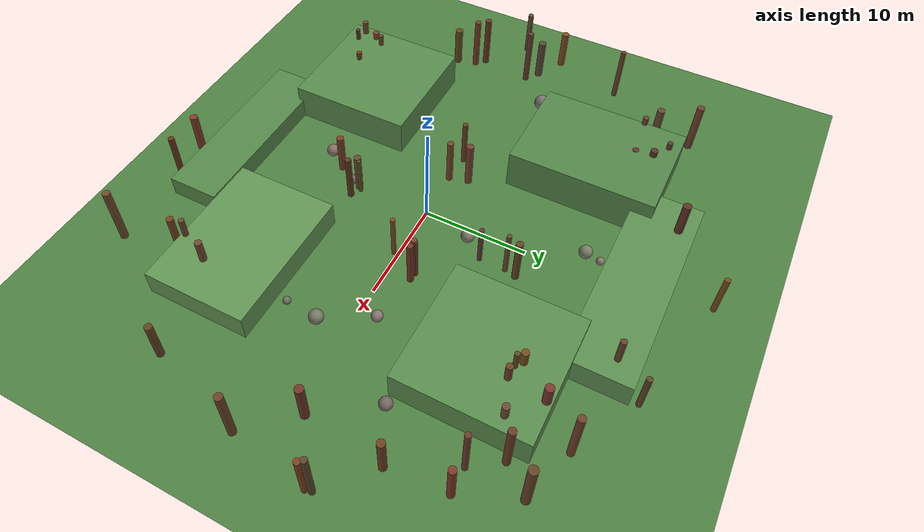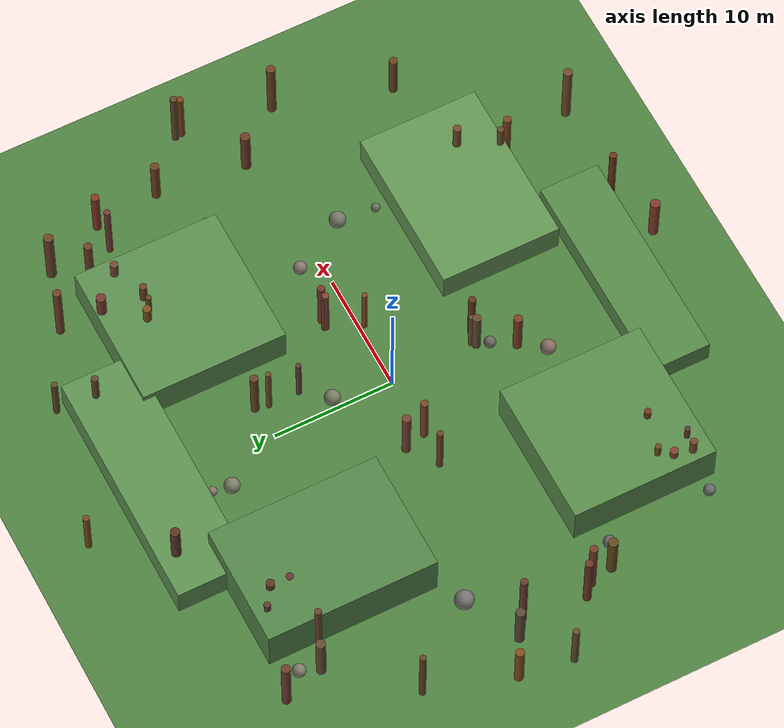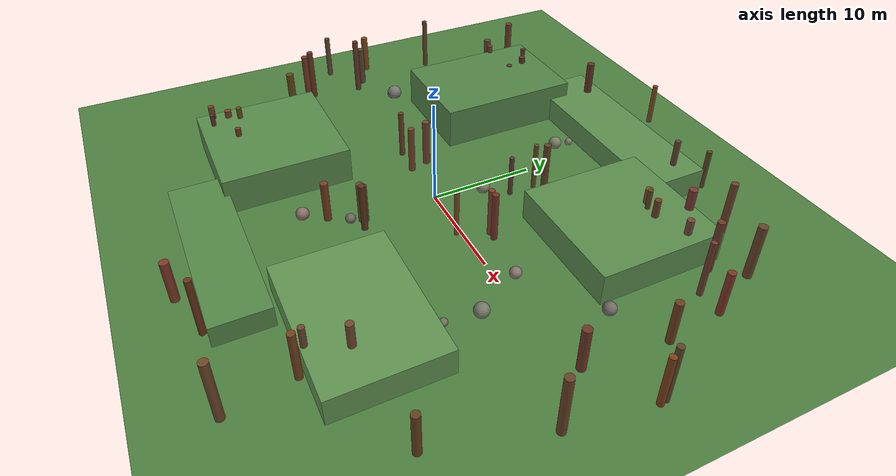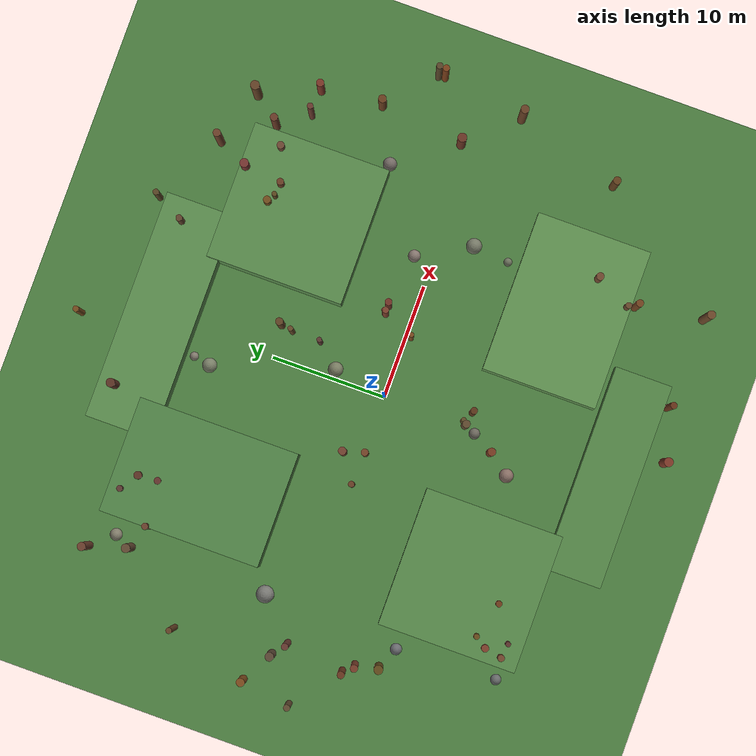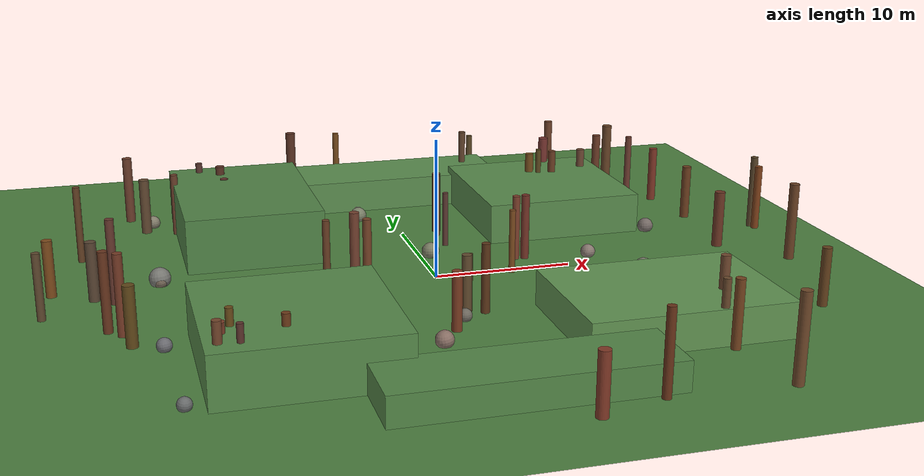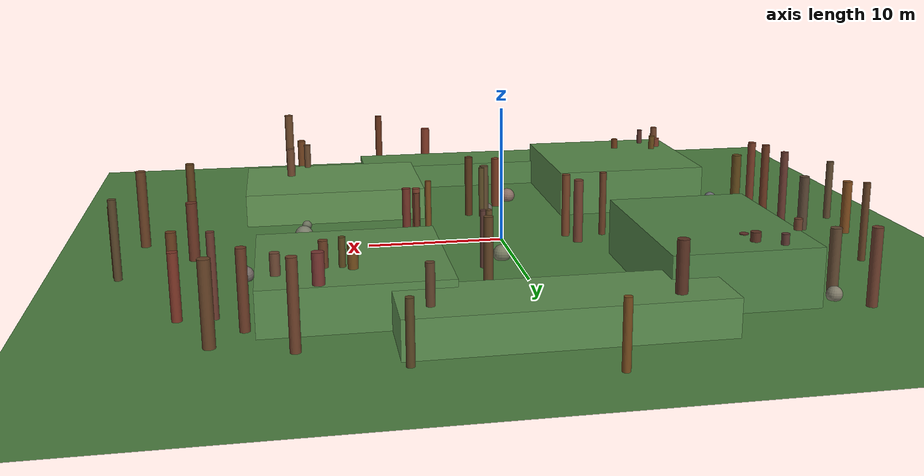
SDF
<?xml version="1.0" ?>
<sdf version="1.8">
  <world name="hills_world">
    <physics name="1ms" type="ignored">
      <max_step_size>0.001</max_step_size>
      <real_time_factor>1.0</real_time_factor>
    </physics>

    <plugin filename="gz-sim-physics-system" name="gz::sim::systems::Physics"/>
    <plugin filename="gz-sim-user-commands-system" name="gz::sim::systems::UserCommands"/>
    <plugin filename="gz-sim-scene-broadcaster-system" name="gz::sim::systems::SceneBroadcaster"/>
    <plugin filename="gz-sim-contact-system" name="gz::sim::systems::Contact"/>
    <plugin filename="gz-sim-sensors-system" name="gz::sim::systems::Sensors">
      <render_engine>ogre2</render_engine>
    </plugin>
    <plugin filename="gz-sim-imu-system" name="gz::sim::systems::Imu"/>

    <gui fullscreen="0">
      <plugin filename="GzScene3D" name="3D View">
        <gz-gui>
          <title>3D View</title>
          <property type="bool" key="showTitleBar">false</property>
        </gz-gui>
        <engine>ogre2</engine>
        <scene>scene</scene>
        <ambient_light>0.4 0.5 0.4</ambient_light>
        <background_color>0.6 0.7 0.85</background_color>
        <camera_pose>0 0 50 0 1.5708 0</camera_pose>
      </plugin>
      <plugin filename="WorldControl" name="World control">
        <gz-gui><title>World control</title></gz-gui>
        <play_pause>true</play_pause>
        <step>true</step>
      </plugin>
      <plugin filename="WorldStats" name="World stats">
        <gz-gui><title>World stats</title></gz-gui>
        <sim_time>true</sim_time>
        <real_time>true</real_time>
        <real_time_factor>true</real_time_factor>
      </plugin>
    </gui>

    <light type="directional" name="sun">
      <cast_shadows>true</cast_shadows>
      <pose>0 0 50 0 0 0</pose>
      <diffuse>0.8 0.8 0.75 1</diffuse>
      <specular>0.2 0.2 0.2 1</specular>
      <attenuation>
        <range>1000</range>
        <constant>0.9</constant>
        <linear>0.01</linear>
        <quadratic>0.001</quadratic>
      </attenuation>
      <direction>-0.3 0.15 -0.9</direction>
    </light>

    <model name="ground_plane">
      <static>true</static>
      <link name="link">
        <collision name="collision">
          <geometry>
            <plane>
              <normal>0 0 1</normal>
              <size>100 100</size>
            </plane>
          </geometry>
        </collision>
        <visual name="visual">
          <geometry>
            <plane>
              <normal>0 0 1</normal>
              <size>100 100</size>
            </plane>
          </geometry>
          <material>
            <ambient>0.3 0.5 0.25 1</ambient>
            <diffuse>0.3 0.5 0.25 1</diffuse>
          </material>
        </visual>
      </link>
    </model>

    <model name="hill_ne">
      <static>true</static>
      <pose>12 12 1.5 0 0 0</pose>
      <link name="link">
        <collision name="collision">
          <geometry><box><size>12 12 3</size></box></geometry>
        </collision>
        <visual name="visual">
          <geometry><box><size>12 12 3</size></box></geometry>
          <material><ambient>0.35 0.55 0.3 1</ambient><diffuse>0.35 0.55 0.3 1</diffuse></material>
        </visual>
      </link>
    </model>

    <model name="hill_nw">
      <static>true</static>
      <pose>-12 12 2.0 0 0 0</pose>
      <link name="link">
        <collision name="collision">
          <geometry><box><size>10 14 4</size></box></geometry>
        </collision>
        <visual name="visual">
          <geometry><box><size>10 14 4</size></box></geometry>
          <material><ambient>0.32 0.52 0.28 1</ambient><diffuse>0.32 0.52 0.28 1</diffuse></material>
        </visual>
      </link>
    </model>

    <model name="hill_se">
      <static>true</static>
      <pose>12 -12 1.25 0 0 0</pose>
      <link name="link">
        <collision name="collision">
          <geometry><box><size>14 10 2.5</size></box></geometry>
        </collision>
        <visual name="visual">
          <geometry><box><size>14 10 2.5</size></box></geometry>
          <material><ambient>0.38 0.58 0.32 1</ambient><diffuse>0.38 0.58 0.32 1</diffuse></material>
        </visual>
      </link>
    </model>

    <model name="hill_sw">
      <static>true</static>
      <pose>-12 -12 1.75 0 0 0</pose>
      <link name="link">
        <collision name="collision">
          <geometry><box><size>12 12 3.5</size></box></geometry>
        </collision>
        <visual name="visual">
          <geometry><box><size>12 12 3.5</size></box></geometry>
          <material><ambient>0.34 0.54 0.29 1</ambient><diffuse>0.34 0.54 0.29 1</diffuse></material>
        </visual>
      </link>
    </model>

    <model name="ridge_north">
      <static>true</static>
      <pose>0 20 1.25 0 0 0</pose>
      <link name="link">
        <collision name="collision">
          <geometry><box><size>20 6 2.5</size></box></geometry>
        </collision>
        <visual name="visual">
          <geometry><box><size>20 6 2.5</size></box></geometry>
          <material><ambient>0.36 0.56 0.31 1</ambient><diffuse>0.36 0.56 0.31 1</diffuse></material>
        </visual>
      </link>
    </model>

    <model name="ridge_south">
      <static>true</static>
      <pose>0 -20 1.0 0 0 0</pose>
      <link name="link">
        <collision name="collision">
          <geometry><box><size>18 5 2</size></box></geometry>
        </collision>
        <visual name="visual">
          <geometry><box><size>18 5 2</size></box></geometry>
          <material><ambient>0.33 0.53 0.28 1</ambient><diffuse>0.33 0.53 0.28 1</diffuse></material>
        </visual>
      </link>
    </model>

    <model name="tree_perimeter_000">
      <static>true</static>
      <pose>7.28 -22.82 2.82 0 0 3.84</pose>
      <link name="link">
        <collision name="collision">
          <geometry><cylinder><radius>0.29</radius><length>5.65</length></cylinder></geometry>
        </collision>
        <visual name="visual">
          <geometry><cylinder><radius>0.29</radius><length>5.65</length></cylinder></geometry>
          <material><ambient>0.41 0.20 0.10 1</ambient><diffuse>0.41 0.20 0.10 1</diffuse></material>
        </visual>
      </link>
    </model>

    <model name="tree_perimeter_001">
      <static>true</static>
      <pose>18.64 16.45 2.61 0 0 4.56</pose>
      <link name="link">
        <collision name="collision">
          <geometry><cylinder><radius>0.33</radius><length>5.22</length></cylinder></geometry>
        </collision>
        <visual name="visual">
          <geometry><cylinder><radius>0.33</radius><length>5.22</length></cylinder></geometry>
          <material><ambient>0.42 0.23 0.15 1</ambient><diffuse>0.42 0.23 0.15 1</diffuse></material>
        </visual>
      </link>
    </model>

    <model name="tree_perimeter_002">
      <static>true</static>
      <pose>15.74 20.42 2.85 0 0 5.47</pose>
      <link name="link">
        <collision name="collision">
          <geometry><cylinder><radius>0.33</radius><length>5.70</length></cylinder></geometry>
        </collision>
        <visual name="visual">
          <geometry><cylinder><radius>0.33</radius><length>5.70</length></cylinder></geometry>
          <material><ambient>0.43 0.25 0.16 1</ambient><diffuse>0.43 0.25 0.16 1</diffuse></material>
        </visual>
      </link>
    </model>

    <model name="tree_perimeter_003">
      <static>true</static>
      <pose>27.30 4.92 2.81 0 0 5.49</pose>
      <link name="link">
        <collision name="collision">
          <geometry><cylinder><radius>0.28</radius><length>5.63</length></cylinder></geometry>
        </collision>
        <visual name="visual">
          <geometry><cylinder><radius>0.28</radius><length>5.63</length></cylinder></geometry>
          <material><ambient>0.35 0.27 0.16 1</ambient><diffuse>0.35 0.27 0.16 1</diffuse></material>
        </visual>
      </link>
    </model>

    <model name="tree_perimeter_004">
      <static>true</static>
      <pose>-26.99 -1.24 2.32 0 0 4.50</pose>
      <link name="link">
        <collision name="collision">
          <geometry><cylinder><radius>0.28</radius><length>4.64</length></cylinder></geometry>
        </collision>
        <visual name="visual">
          <geometry><cylinder><radius>0.28</radius><length>4.64</length></cylinder></geometry>
          <material><ambient>0.37 0.28 0.18 1</ambient><diffuse>0.37 0.28 0.18 1</diffuse></material>
        </visual>
      </link>
    </model>

    <model name="tree_perimeter_005">
      <static>true</static>
      <pose>22.77 13.89 2.20 0 0 1.74</pose>
      <link name="link">
        <collision name="collision">
          <geometry><cylinder><radius>0.33</radius><length>4.41</length></cylinder></geometry>
        </collision>
        <visual name="visual">
          <geometry><cylinder><radius>0.33</radius><length>4.41</length></cylinder></geometry>
          <material><ambient>0.49 0.21 0.15 1</ambient><diffuse>0.49 0.21 0.15 1</diffuse></material>
        </visual>
      </link>
    </model>

    <model name="tree_perimeter_006">
      <static>true</static>
      <pose>8.06 20.99 2.56 0 0 0.54</pose>
      <link name="link">
        <collision name="collision">
          <geometry><cylinder><radius>0.28</radius><length>5.12</length></cylinder></geometry>
        </collision>
        <visual name="visual">
          <geometry><cylinder><radius>0.28</radius><length>5.12</length></cylinder></geometry>
          <material><ambient>0.38 0.26 0.17 1</ambient><diffuse>0.38 0.26 0.17 1</diffuse></material>
        </visual>
      </link>
    </model>

    <model name="tree_perimeter_007">
      <static>true</static>
      <pose>-24.24 10.01 2.84 0 0 3.01</pose>
      <link name="link">
        <collision name="collision">
          <geometry><cylinder><radius>0.26</radius><length>5.68</length></cylinder></geometry>
        </collision>
        <visual name="visual">
          <geometry><cylinder><radius>0.26</radius><length>5.68</length></cylinder></geometry>
          <material><ambient>0.39 0.25 0.14 1</ambient><diffuse>0.39 0.25 0.14 1</diffuse></material>
        </visual>
      </link>
    </model>

    <model name="tree_perimeter_008">
      <static>true</static>
      <pose>26.27 -2.97 2.85 0 0 2.41</pose>
      <link name="link">
        <collision name="collision">
          <geometry><cylinder><radius>0.36</radius><length>5.70</length></cylinder></geometry>
        </collision>
        <visual name="visual">
          <geometry><cylinder><radius>0.36</radius><length>5.70</length></cylinder></geometry>
          <material><ambient>0.41 0.25 0.14 1</ambient><diffuse>0.41 0.25 0.14 1</diffuse></material>
        </visual>
      </link>
    </model>

    <model name="tree_perimeter_009">
      <static>true</static>
      <pose>20.49 13.91 2.78 0 0 0.77</pose>
      <link name="link">
        <collision name="collision">
          <geometry><cylinder><radius>0.26</radius><length>5.56</length></cylinder></geometry>
        </collision>
        <visual name="visual">
          <geometry><cylinder><radius>0.26</radius><length>5.56</length></cylinder></geometry>
          <material><ambient>0.42 0.23 0.18 1</ambient><diffuse>0.42 0.23 0.18 1</diffuse></material>
        </visual>
      </link>
    </model>

    <model name="tree_perimeter_010">
      <static>true</static>
      <pose>-22.00 -5.35 2.78 0 0 6.00</pose>
      <link name="link">
        <collision name="collision">
          <geometry><cylinder><radius>0.32</radius><length>5.55</length></cylinder></geometry>
        </collision>
        <visual name="visual">
          <geometry><cylinder><radius>0.32</radius><length>5.55</length></cylinder></geometry>
          <material><ambient>0.46 0.23 0.15 1</ambient><diffuse>0.46 0.23 0.15 1</diffuse></material>
        </visual>
      </link>
    </model>

    <model name="tree_perimeter_011">
      <static>true</static>
      <pose>-21.52 -7.30 2.06 0 0 4.64</pose>
      <link name="link">
        <collision name="collision">
          <geometry><cylinder><radius>0.39</radius><length>4.11</length></cylinder></geometry>
        </collision>
        <visual name="visual">
          <geometry><cylinder><radius>0.39</radius><length>4.11</length></cylinder></geometry>
          <material><ambient>0.38 0.28 0.10 1</ambient><diffuse>0.38 0.28 0.10 1</diffuse></material>
        </visual>
      </link>
    </model>

    <model name="tree_perimeter_012">
      <static>true</static>
      <pose>15.38 -23.21 2.95 0 0 6.08</pose>
      <link name="link">
        <collision name="collision">
          <geometry><cylinder><radius>0.36</radius><length>5.89</length></cylinder></geometry>
        </collision>
        <visual name="visual">
          <geometry><cylinder><radius>0.36</radius><length>5.89</length></cylinder></geometry>
          <material><ambient>0.43 0.28 0.16 1</ambient><diffuse>0.43 0.28 0.16 1</diffuse></material>
        </visual>
      </link>
    </model>

    <model name="tree_perimeter_013">
      <static>true</static>
      <pose>-22.87 -4.51 2.74 0 0 5.33</pose>
      <link name="link">
        <collision name="collision">
          <geometry><cylinder><radius>0.32</radius><length>5.48</length></cylinder></geometry>
        </collision>
        <visual name="visual">
          <geometry><cylinder><radius>0.32</radius><length>5.48</length></cylinder></geometry>
          <material><ambient>0.41 0.21 0.12 1</ambient><diffuse>0.41 0.21 0.12 1</diffuse></material>
        </visual>
      </link>
    </model>

    <model name="tree_perimeter_014">
      <static>true</static>
      <pose>2.82 -24.14 2.04 0 0 4.69</pose>
      <link name="link">
        <collision name="collision">
          <geometry><cylinder><radius>0.39</radius><length>4.07</length></cylinder></geometry>
        </collision>
        <visual name="visual">
          <geometry><cylinder><radius>0.39</radius><length>4.07</length></cylinder></geometry>
          <material><ambient>0.50 0.22 0.15 1</ambient><diffuse>0.50 0.22 0.15 1</diffuse></material>
        </visual>
      </link>
    </model>

    <model name="tree_perimeter_015">
      <static>true</static>
      <pose>-22.23 0.59 2.99 0 0 4.90</pose>
      <link name="link">
        <collision name="collision">
          <geometry><cylinder><radius>0.30</radius><length>5.98</length></cylinder></geometry>
        </collision>
        <visual name="visual">
          <geometry><cylinder><radius>0.30</radius><length>5.98</length></cylinder></geometry>
          <material><ambient>0.40 0.22 0.18 1</ambient><diffuse>0.40 0.22 0.18 1</diffuse></material>
        </visual>
      </link>
    </model>

    <model name="tree_perimeter_016">
      <static>true</static>
      <pose>20.60 18.84 2.69 0 0 0.73</pose>
      <link name="link">
        <collision name="collision">
          <geometry><cylinder><radius>0.39</radius><length>5.38</length></cylinder></geometry>
        </collision>
        <visual name="visual">
          <geometry><cylinder><radius>0.39</radius><length>5.38</length></cylinder></geometry>
          <material><ambient>0.40 0.26 0.15 1</ambient><diffuse>0.40 0.26 0.15 1</diffuse></material>
        </visual>
      </link>
    </model>

    <model name="tree_perimeter_017">
      <static>true</static>
      <pose>23.31 8.55 2.10 0 0 5.96</pose>
      <link name="link">
        <collision name="collision">
          <geometry><cylinder><radius>0.35</radius><length>4.19</length></cylinder></geometry>
        </collision>
        <visual name="visual">
          <geometry><cylinder><radius>0.35</radius><length>4.19</length></cylinder></geometry>
          <material><ambient>0.42 0.24 0.12 1</ambient><diffuse>0.42 0.24 0.12 1</diffuse></material>
        </visual>
      </link>
    </model>

    <model name="tree_perimeter_018">
      <static>true</static>
      <pose>-6.73 21.52 2.92 0 0 5.13</pose>
      <link name="link">
        <collision name="collision">
          <geometry><cylinder><radius>0.38</radius><length>5.83</length></cylinder></geometry>
        </collision>
        <visual name="visual">
          <geometry><cylinder><radius>0.38</radius><length>5.83</length></cylinder></geometry>
          <material><ambient>0.36 0.20 0.14 1</ambient><diffuse>0.36 0.20 0.14 1</diffuse></material>
        </visual>
      </link>
    </model>

    <model name="tree_perimeter_019">
      <static>true</static>
      <pose>23.51 -12.23 2.06 0 0 5.05</pose>
      <link name="link">
        <collision name="collision">
          <geometry><cylinder><radius>0.34</radius><length>4.12</length></cylinder></geometry>
        </collision>
        <visual name="visual">
          <geometry><cylinder><radius>0.34</radius><length>4.12</length></cylinder></geometry>
          <material><ambient>0.39 0.25 0.11 1</ambient><diffuse>0.39 0.25 0.11 1</diffuse></material>
        </visual>
      </link>
    </model>

    <model name="tree_perimeter_020">
      <static>true</static>
      <pose>-26.38 3.09 2.03 0 0 1.76</pose>
      <link name="link">
        <collision name="collision">
          <geometry><cylinder><radius>0.36</radius><length>4.05</length></cylinder></geometry>
        </collision>
        <visual name="visual">
          <geometry><cylinder><radius>0.36</radius><length>4.05</length></cylinder></geometry>
          <material><ambient>0.49 0.29 0.11 1</ambient><diffuse>0.49 0.29 0.11 1</diffuse></material>
        </visual>
      </link>
    </model>

    <model name="tree_perimeter_021">
      <static>true</static>
      <pose>22.50 1.16 2.11 0 0 6.00</pose>
      <link name="link">
        <collision name="collision">
          <geometry><cylinder><radius>0.39</radius><length>4.23</length></cylinder></geometry>
        </collision>
        <visual name="visual">
          <geometry><cylinder><radius>0.39</radius><length>4.23</length></cylinder></geometry>
          <material><ambient>0.42 0.21 0.14 1</ambient><diffuse>0.42 0.21 0.14 1</diffuse></material>
        </visual>
      </link>
    </model>

    <model name="tree_perimeter_022">
      <static>true</static>
      <pose>-19.18 15.81 2.14 0 0 6.04</pose>
      <link name="link">
        <collision name="collision">
          <geometry><cylinder><radius>0.38</radius><length>4.27</length></cylinder></geometry>
        </collision>
        <visual name="visual">
          <geometry><cylinder><radius>0.38</radius><length>4.27</length></cylinder></geometry>
          <material><ambient>0.38 0.28 0.19 1</ambient><diffuse>0.38 0.28 0.19 1</diffuse></material>
        </visual>
      </link>
    </model>

    <model name="tree_perimeter_023">
      <static>true</static>
      <pose>-1.93 26.56 2.16 0 0 5.75</pose>
      <link name="link">
        <collision name="collision">
          <geometry><cylinder><radius>0.26</radius><length>4.33</length></cylinder></geometry>
        </collision>
        <visual name="visual">
          <geometry><cylinder><radius>0.26</radius><length>4.33</length></cylinder></geometry>
          <material><ambient>0.46 0.29 0.11 1</ambient><diffuse>0.46 0.29 0.11 1</diffuse></material>
        </visual>
      </link>
    </model>

    <model name="tree_perimeter_024">
      <static>true</static>
      <pose>27.41 4.36 2.50 0 0 4.36</pose>
      <link name="link">
        <collision name="collision">
          <geometry><cylinder><radius>0.29</radius><length>5.00</length></cylinder></geometry>
        </collision>
        <visual name="visual">
          <geometry><cylinder><radius>0.29</radius><length>5.00</length></cylinder></geometry>
          <material><ambient>0.49 0.25 0.10 1</ambient><diffuse>0.49 0.25 0.10 1</diffuse></material>
        </visual>
      </link>
    </model>

    <model name="tree_perimeter_025">
      <static>true</static>
      <pose>-20.23 19.20 2.60 0 0 1.82</pose>
      <link name="link">
        <collision name="collision">
          <geometry><cylinder><radius>0.36</radius><length>5.20</length></cylinder></geometry>
        </collision>
        <visual name="visual">
          <geometry><cylinder><radius>0.36</radius><length>5.20</length></cylinder></geometry>
          <material><ambient>0.42 0.24 0.17 1</ambient><diffuse>0.42 0.24 0.17 1</diffuse></material>
        </visual>
      </link>
    </model>

    <model name="tree_perimeter_026">
      <static>true</static>
      <pose>-23.56 1.55 2.10 0 0 1.09</pose>
      <link name="link">
        <collision name="collision">
          <geometry><cylinder><radius>0.38</radius><length>4.21</length></cylinder></geometry>
        </collision>
        <visual name="visual">
          <geometry><cylinder><radius>0.38</radius><length>4.21</length></cylinder></geometry>
          <material><ambient>0.35 0.27 0.20 1</ambient><diffuse>0.35 0.27 0.20 1</diffuse></material>
        </visual>
      </link>
    </model>

    <model name="tree_perimeter_027">
      <static>true</static>
      <pose>-17.14 -16.47 2.45 0 0 3.04</pose>
      <link name="link">
        <collision name="collision">
          <geometry><cylinder><radius>0.29</radius><length>4.91</length></cylinder></geometry>
        </collision>
        <visual name="visual">
          <geometry><cylinder><radius>0.29</radius><length>4.91</length></cylinder></geometry>
          <material><ambient>0.45 0.27 0.17 1</ambient><diffuse>0.45 0.27 0.17 1</diffuse></material>
        </visual>
      </link>
    </model>

    <model name="tree_perimeter_028">
      <static>true</static>
      <pose>9.54 23.70 2.02 0 0 4.99</pose>
      <link name="link">
        <collision name="collision">
          <geometry><cylinder><radius>0.26</radius><length>4.04</length></cylinder></geometry>
        </collision>
        <visual name="visual">
          <geometry><cylinder><radius>0.26</radius><length>4.04</length></cylinder></geometry>
          <material><ambient>0.35 0.27 0.14 1</ambient><diffuse>0.35 0.27 0.14 1</diffuse></material>
        </visual>
      </link>
    </model>

    <model name="tree_perimeter_029">
      <static>true</static>
      <pose>14.22 17.49 2.51 0 0 2.43</pose>
      <link name="link">
        <collision name="collision">
          <geometry><cylinder><radius>0.38</radius><length>5.02</length></cylinder></geometry>
        </collision>
        <visual name="visual">
          <geometry><cylinder><radius>0.38</radius><length>5.02</length></cylinder></geometry>
          <material><ambient>0.47 0.21 0.19 1</ambient><diffuse>0.47 0.21 0.19 1</diffuse></material>
        </visual>
      </link>
    </model>

    <model name="tree_scatter_000">
      <static>true</static>
      <pose>5.50 -0.45 2.33 0 0 5.10</pose>
      <link name="link">
        <collision name="collision">
          <geometry><cylinder><radius>0.22</radius><length>4.66</length></cylinder></geometry>
        </collision>
        <visual name="visual">
          <geometry><cylinder><radius>0.22</radius><length>4.66</length></cylinder></geometry>
          <material><ambient>0.48 0.29 0.12 1</ambient><diffuse>0.48 0.29 0.12 1</diffuse></material>
        </visual>
      </link>
    </model>

    <model name="tree_scatter_001">
      <static>true</static>
      <pose>6.70 2.26 2.41 0 0 3.73</pose>
      <link name="link">
        <collision name="collision">
          <geometry><cylinder><radius>0.28</radius><length>4.82</length></cylinder></geometry>
        </collision>
        <visual name="visual">
          <geometry><cylinder><radius>0.28</radius><length>4.82</length></cylinder></geometry>
          <material><ambient>0.49 0.25 0.17 1</ambient><diffuse>0.49 0.25 0.17 1</diffuse></material>
        </visual>
      </link>
    </model>

    <model name="tree_scatter_002">
      <static>true</static>
      <pose>7.41 2.26 2.42 0 0 0.66</pose>
      <link name="link">
        <collision name="collision">
          <geometry><cylinder><radius>0.30</radius><length>4.85</length></cylinder></geometry>
        </collision>
        <visual name="visual">
          <geometry><cylinder><radius>0.30</radius><length>4.85</length></cylinder></geometry>
          <material><ambient>0.45 0.20 0.15 1</ambient><diffuse>0.45 0.20 0.15 1</diffuse></material>
        </visual>
      </link>
    </model>

    <model name="tree_scatter_003">
      <static>true</static>
      <pose>6.70 2.40 2.26 0 0 0.17</pose>
      <link name="link">
        <collision name="collision">
          <geometry><cylinder><radius>0.21</radius><length>4.52</length></cylinder></geometry>
        </collision>
        <visual name="visual">
          <geometry><cylinder><radius>0.21</radius><length>4.52</length></cylinder></geometry>
          <material><ambient>0.40 0.21 0.13 1</ambient><diffuse>0.40 0.21 0.13 1</diffuse></material>
        </visual>
      </link>
    </model>

    <model name="tree_scatter_004">
      <static>true</static>
      <pose>-5.52 1.66 2.38 0 0 0.81</pose>
      <link name="link">
        <collision name="collision">
          <geometry><cylinder><radius>0.35</radius><length>4.75</length></cylinder></geometry>
        </collision>
        <visual name="visual">
          <geometry><cylinder><radius>0.35</radius><length>4.75</length></cylinder></geometry>
          <material><ambient>0.45 0.25 0.18 1</ambient><diffuse>0.45 0.25 0.18 1</diffuse></material>
        </visual>
      </link>
    </model>

    <model name="tree_scatter_005">
      <static>true</static>
      <pose>-5.00 -0.13 2.39 0 0 5.09</pose>
      <link name="link">
        <collision name="collision">
          <geometry><cylinder><radius>0.31</radius><length>4.78</length></cylinder></geometry>
        </collision>
        <visual name="visual">
          <geometry><cylinder><radius>0.31</radius><length>4.78</length></cylinder></geometry>
          <material><ambient>0.46 0.26 0.15 1</ambient><diffuse>0.46 0.26 0.15 1</diffuse></material>
        </visual>
      </link>
    </model>

    <model name="tree_scatter_006">
      <static>true</static>
      <pose>-7.85 0.03 2.43 0 0 4.84</pose>
      <link name="link">
        <collision name="collision">
          <geometry><cylinder><radius>0.26</radius><length>4.87</length></cylinder></geometry>
        </collision>
        <visual name="visual">
          <geometry><cylinder><radius>0.26</radius><length>4.87</length></cylinder></geometry>
          <material><ambient>0.41 0.24 0.14 1</ambient><diffuse>0.41 0.24 0.14 1</diffuse></material>
        </visual>
      </link>
    </model>

    <model name="tree_scatter_007">
      <static>true</static>
      <pose>2.82 10.25 2.33 0 0 0.16</pose>
      <link name="link">
        <collision name="collision">
          <geometry><cylinder><radius>0.33</radius><length>4.66</length></cylinder></geometry>
        </collision>
        <visual name="visual">
          <geometry><cylinder><radius>0.33</radius><length>4.66</length></cylinder></geometry>
          <material><ambient>0.38 0.26 0.14 1</ambient><diffuse>0.38 0.26 0.14 1</diffuse></material>
        </visual>
      </link>
    </model>

    <model name="tree_scatter_008">
      <static>true</static>
      <pose>2.55 6.65 2.07 0 0 2.68</pose>
      <link name="link">
        <collision name="collision">
          <geometry><cylinder><radius>0.22</radius><length>4.14</length></cylinder></geometry>
        </collision>
        <visual name="visual">
          <geometry><cylinder><radius>0.22</radius><length>4.14</length></cylinder></geometry>
          <material><ambient>0.36 0.22 0.19 1</ambient><diffuse>0.36 0.22 0.19 1</diffuse></material>
        </visual>
      </link>
    </model>

    <model name="tree_scatter_009">
      <static>true</static>
      <pose>2.58 9.18 2.41 0 0 5.03</pose>
      <link name="link">
        <collision name="collision">
          <geometry><cylinder><radius>0.23</radius><length>4.82</length></cylinder></geometry>
        </collision>
        <visual name="visual">
          <geometry><cylinder><radius>0.23</radius><length>4.82</length></cylinder></geometry>
          <material><ambient>0.40 0.29 0.16 1</ambient><diffuse>0.40 0.29 0.16 1</diffuse></material>
        </visual>
      </link>
    </model>

    <model name="tree_scatter_010">
      <static>true</static>
      <pose>0.37 -6.94 2.01 0 0 4.70</pose>
      <link name="link">
        <collision name="collision">
          <geometry><cylinder><radius>0.21</radius><length>4.02</length></cylinder></geometry>
        </collision>
        <visual name="visual">
          <geometry><cylinder><radius>0.21</radius><length>4.02</length></cylinder></geometry>
          <material><ambient>0.37 0.30 0.15 1</ambient><diffuse>0.37 0.30 0.15 1</diffuse></material>
        </visual>
      </link>
    </model>

    <model name="tree_scatter_011">
      <static>true</static>
      <pose>1.32 -7.48 2.41 0 0 0.87</pose>
      <link name="link">
        <collision name="collision">
          <geometry><cylinder><radius>0.30</radius><length>4.82</length></cylinder></geometry>
        </collision>
        <visual name="visual">
          <geometry><cylinder><radius>0.30</radius><length>4.82</length></cylinder></geometry>
          <material><ambient>0.36 0.21 0.10 1</ambient><diffuse>0.36 0.21 0.10 1</diffuse></material>
        </visual>
      </link>
    </model>

    <model name="tree_scatter_012">
      <static>true</static>
      <pose>-1.37 -10.03 2.03 0 0 4.88</pose>
      <link name="link">
        <collision name="collision">
          <geometry><cylinder><radius>0.35</radius><length>4.06</length></cylinder></geometry>
        </collision>
        <visual name="visual">
          <geometry><cylinder><radius>0.35</radius><length>4.06</length></cylinder></geometry>
          <material><ambient>0.47 0.23 0.13 1</ambient><diffuse>0.47 0.23 0.13 1</diffuse></material>
        </visual>
      </link>
    </model>

    <model name="tree_scatter_013">
      <static>true</static>
      <pose>0.09 -7.26 2.04 0 0 5.73</pose>
      <link name="link">
        <collision name="collision">
          <geometry><cylinder><radius>0.34</radius><length>4.09</length></cylinder></geometry>
        </collision>
        <visual name="visual">
          <geometry><cylinder><radius>0.34</radius><length>4.09</length></cylinder></geometry>
          <material><ambient>0.38 0.29 0.18 1</ambient><diffuse>0.38 0.29 0.18 1</diffuse></material>
        </visual>
      </link>
    </model>

    <model name="tree_scatter_014">
      <static>true</static>
      <pose>13.80 14.16 2.37 0 0 2.57</pose>
      <link name="link">
        <collision name="collision">
          <geometry><cylinder><radius>0.30</radius><length>4.74</length></cylinder></geometry>
        </collision>
        <visual name="visual">
          <geometry><cylinder><radius>0.30</radius><length>4.74</length></cylinder></geometry>
          <material><ambient>0.42 0.24 0.14 1</ambient><diffuse>0.42 0.24 0.14 1</diffuse></material>
        </visual>
      </link>
    </model>

    <model name="tree_scatter_015">
      <static>true</static>
      <pose>12.03 14.70 2.25 0 0 4.42</pose>
      <link name="link">
        <collision name="collision">
          <geometry><cylinder><radius>0.33</radius><length>4.50</length></cylinder></geometry>
        </collision>
        <visual name="visual">
          <geometry><cylinder><radius>0.33</radius><length>4.50</length></cylinder></geometry>
          <material><ambient>0.45 0.30 0.11 1</ambient><diffuse>0.45 0.30 0.11 1</diffuse></material>
        </visual>
      </link>
    </model>

    <model name="tree_scatter_016">
      <static>true</static>
      <pose>16.73 15.20 2.21 0 0 1.94</pose>
      <link name="link">
        <collision name="collision">
          <geometry><cylinder><radius>0.32</radius><length>4.43</length></cylinder></geometry>
        </collision>
        <visual name="visual">
          <geometry><cylinder><radius>0.32</radius><length>4.43</length></cylinder></geometry>
          <material><ambient>0.43 0.28 0.20 1</ambient><diffuse>0.43 0.28 0.20 1</diffuse></material>
        </visual>
      </link>
    </model>

    <model name="tree_scatter_017">
      <static>true</static>
      <pose>12.66 14.26 2.46 0 0 5.15</pose>
      <link name="link">
        <collision name="collision">
          <geometry><cylinder><radius>0.22</radius><length>4.92</length></cylinder></geometry>
        </collision>
        <visual name="visual">
          <geometry><cylinder><radius>0.22</radius><length>4.92</length></cylinder></geometry>
          <material><ambient>0.36 0.28 0.12 1</ambient><diffuse>0.36 0.28 0.12 1</diffuse></material>
        </visual>
      </link>
    </model>

    <model name="tree_scatter_018">
      <static>true</static>
      <pose>-13.16 16.91 2.32 0 0 2.71</pose>
      <link name="link">
        <collision name="collision">
          <geometry><cylinder><radius>0.34</radius><length>4.63</length></cylinder></geometry>
        </collision>
        <visual name="visual">
          <geometry><cylinder><radius>0.34</radius><length>4.63</length></cylinder></geometry>
          <material><ambient>0.36 0.20 0.14 1</ambient><diffuse>0.36 0.20 0.14 1</diffuse></material>
        </visual>
      </link>
    </model>

    <model name="tree_scatter_019">
      <static>true</static>
      <pose>-13.05 15.26 2.03 0 0 5.51</pose>
      <link name="link">
        <collision name="collision">
          <geometry><cylinder><radius>0.30</radius><length>4.07</length></cylinder></geometry>
        </collision>
        <visual name="visual">
          <geometry><cylinder><radius>0.30</radius><length>4.07</length></cylinder></geometry>
          <material><ambient>0.39 0.20 0.17 1</ambient><diffuse>0.39 0.20 0.17 1</diffuse></material>
        </visual>
      </link>
    </model>

    <model name="tree_scatter_020">
      <static>true</static>
      <pose>-14.70 17.94 2.36 0 0 1.75</pose>
      <link name="link">
        <collision name="collision">
          <geometry><cylinder><radius>0.26</radius><length>4.71</length></cylinder></geometry>
        </collision>
        <visual name="visual">
          <geometry><cylinder><radius>0.26</radius><length>4.71</length></cylinder></geometry>
          <material><ambient>0.36 0.22 0.19 1</ambient><diffuse>0.36 0.22 0.19 1</diffuse></material>
        </visual>
      </link>
    </model>

    <model name="tree_scatter_021">
      <static>true</static>
      <pose>-16.93 14.89 2.38 0 0 5.66</pose>
      <link name="link">
        <collision name="collision">
          <geometry><cylinder><radius>0.28</radius><length>4.77</length></cylinder></geometry>
        </collision>
        <visual name="visual">
          <geometry><cylinder><radius>0.28</radius><length>4.77</length></cylinder></geometry>
          <material><ambient>0.42 0.25 0.17 1</ambient><diffuse>0.42 0.25 0.17 1</diffuse></material>
        </visual>
      </link>
    </model>

    <model name="tree_scatter_022">
      <static>true</static>
      <pose>13.95 -16.62 2.22 0 0 2.15</pose>
      <link name="link">
        <collision name="collision">
          <geometry><cylinder><radius>0.27</radius><length>4.44</length></cylinder></geometry>
        </collision>
        <visual name="visual">
          <geometry><cylinder><radius>0.27</radius><length>4.44</length></cylinder></geometry>
          <material><ambient>0.41 0.28 0.17 1</ambient><diffuse>0.41 0.28 0.17 1</diffuse></material>
        </visual>
      </link>
    </model>

    <model name="tree_scatter_023">
      <static>true</static>
      <pose>15.39 -13.57 2.39 0 0 5.58</pose>
      <link name="link">
        <collision name="collision">
          <geometry><cylinder><radius>0.33</radius><length>4.78</length></cylinder></geometry>
        </collision>
        <visual name="visual">
          <geometry><cylinder><radius>0.33</radius><length>4.78</length></cylinder></geometry>
          <material><ambient>0.44 0.28 0.18 1</ambient><diffuse>0.44 0.28 0.18 1</diffuse></material>
        </visual>
      </link>
    </model>

    <model name="tree_scatter_024">
      <static>true</static>
      <pose>14.41 -17.42 2.33 0 0 1.49</pose>
      <link name="link">
        <collision name="collision">
          <geometry><cylinder><radius>0.32</radius><length>4.66</length></cylinder></geometry>
        </collision>
        <visual name="visual">
          <geometry><cylinder><radius>0.32</radius><length>4.66</length></cylinder></geometry>
          <material><ambient>0.45 0.26 0.12 1</ambient><diffuse>0.45 0.26 0.12 1</diffuse></material>
        </visual>
      </link>
    </model>

    <model name="tree_scatter_025">
      <static>true</static>
      <pose>-16.16 -13.99 2.32 0 0 1.38</pose>
      <link name="link">
        <collision name="collision">
          <geometry><cylinder><radius>0.25</radius><length>4.64</length></cylinder></geometry>
        </collision>
        <visual name="visual">
          <geometry><cylinder><radius>0.25</radius><length>4.64</length></cylinder></geometry>
          <material><ambient>0.41 0.29 0.10 1</ambient><diffuse>0.41 0.29 0.10 1</diffuse></material>
        </visual>
      </link>
    </model>

    <model name="tree_scatter_026">
      <static>true</static>
      <pose>-16.85 -15.00 2.11 0 0 6.05</pose>
      <link name="link">
        <collision name="collision">
          <geometry><cylinder><radius>0.32</radius><length>4.21</length></cylinder></geometry>
        </collision>
        <visual name="visual">
          <geometry><cylinder><radius>0.32</radius><length>4.21</length></cylinder></geometry>
          <material><ambient>0.49 0.24 0.16 1</ambient><diffuse>0.49 0.24 0.16 1</diffuse></material>
        </visual>
      </link>
    </model>

    <model name="tree_scatter_027">
      <static>true</static>
      <pose>-15.87 -16.65 2.34 0 0 1.90</pose>
      <link name="link">
        <collision name="collision">
          <geometry><cylinder><radius>0.22</radius><length>4.67</length></cylinder></geometry>
        </collision>
        <visual name="visual">
          <geometry><cylinder><radius>0.22</radius><length>4.67</length></cylinder></geometry>
          <material><ambient>0.36 0.20 0.17 1</ambient><diffuse>0.36 0.20 0.17 1</diffuse></material>
        </visual>
      </link>
    </model>

    <model name="tree_scatter_028">
      <static>true</static>
      <pose>-13.01 -14.84 2.15 0 0 1.44</pose>
      <link name="link">
        <collision name="collision">
          <geometry><cylinder><radius>0.27</radius><length>4.30</length></cylinder></geometry>
        </collision>
        <visual name="visual">
          <geometry><cylinder><radius>0.27</radius><length>4.30</length></cylinder></geometry>
          <material><ambient>0.43 0.23 0.10 1</ambient><diffuse>0.43 0.23 0.10 1</diffuse></material>
        </visual>
      </link>
    </model>

    <model name="rock_000">
      <static>true</static>
      <pose>-10.43 17.69 0.27 -0.04 -0.02 6.04</pose>
      <link name="link">
        <collision name="collision">
          <geometry><sphere><radius>0.54</radius></sphere></geometry>
        </collision>
        <visual name="visual">
          <geometry><sphere><radius>0.54</radius></sphere></geometry>
          <material><ambient>0.48 0.50 0.39 1</ambient><diffuse>0.48 0.50 0.39 1</diffuse></material>
        </visual>
      </link>
    </model>

    <model name="rock_001">
      <static>true</static>
      <pose>7.27 -8.84 0.19 0.14 0.01 0.14</pose>
      <link name="link">
        <collision name="collision">
          <geometry><sphere><radius>0.39</radius></sphere></geometry>
        </collision>
        <visual name="visual">
          <geometry><sphere><radius>0.39</radius></sphere></geometry>
          <material><ambient>0.54 0.47 0.41 1</ambient><diffuse>0.54 0.47 0.41 1</diffuse></material>
        </visual>
      </link>
    </model>

    <model name="rock_002">
      <static>true</static>
      <pose>-19.63 -8.17 0.25 -0.03 -0.20 5.48</pose>
      <link name="link">
        <collision name="collision">
          <geometry><sphere><radius>0.51</radius></sphere></geometry>
        </collision>
        <visual name="visual">
          <geometry><sphere><radius>0.51</radius></sphere></geometry>
          <material><ambient>0.41 0.41 0.43 1</ambient><diffuse>0.41 0.41 0.43 1</diffuse></material>
        </visual>
      </link>
    </model>

    <model name="rock_003">
      <static>true</static>
      <pose>0.85 4.67 0.32 -0.08 -0.06 1.72</pose>
      <link name="link">
        <collision name="collision">
          <geometry><sphere><radius>0.65</radius></sphere></geometry>
        </collision>
        <visual name="visual">
          <geometry><sphere><radius>0.65</radius></sphere></geometry>
          <material><ambient>0.47 0.48 0.38 1</ambient><diffuse>0.47 0.48 0.38 1</diffuse></material>
        </visual>
      </link>
    </model>

    <model name="rock_004">
      <static>true</static>
      <pose>15.06 12.08 0.32 -0.15 0.02 2.22</pose>
      <link name="link">
        <collision name="collision">
          <geometry><sphere><radius>0.64</radius></sphere></geometry>
        </collision>
        <visual name="visual">
          <geometry><sphere><radius>0.64</radius></sphere></geometry>
          <material><ambient>0.53 0.41 0.39 1</ambient><diffuse>0.53 0.41 0.39 1</diffuse></material>
        </visual>
      </link>
    </model>

    <model name="rock_005">
      <static>true</static>
      <pose>12.19 1.67 0.27 -0.03 0.12 1.18</pose>
      <link name="link">
        <collision name="collision">
          <geometry><sphere><radius>0.54</radius></sphere></geometry>
        </collision>
        <visual name="visual">
          <geometry><sphere><radius>0.54</radius></sphere></geometry>
          <material><ambient>0.52 0.46 0.43 1</ambient><diffuse>0.52 0.46 0.43 1</diffuse></material>
        </visual>
      </link>
    </model>

    <model name="rock_006">
      <static>true</static>
      <pose>16.61 15.74 0.25 0.12 0.00 4.53</pose>
      <link name="link">
        <collision name="collision">
          <geometry><sphere><radius>0.49</radius></sphere></geometry>
        </collision>
        <visual name="visual">
          <geometry><sphere><radius>0.49</radius></sphere></geometry>
          <material><ambient>0.42 0.48 0.37 1</ambient><diffuse>0.42 0.48 0.37 1</diffuse></material>
        </visual>
      </link>
    </model>

    <model name="rock_007">
      <static>true</static>
      <pose>14.69 -2.82 0.34 0.02 -0.13 5.95</pose>
      <link name="link">
        <collision name="collision">
          <geometry><sphere><radius>0.68</radius></sphere></geometry>
        </collision>
        <visual name="visual">
          <geometry><sphere><radius>0.68</radius></sphere></geometry>
          <material><ambient>0.46 0.47 0.40 1</ambient><diffuse>0.46 0.47 0.40 1</diffuse></material>
        </visual>
      </link>
    </model>

    <model name="rock_008">
      <static>true</static>
      <pose>-19.03 3.79 0.39 0.08 -0.12 4.85</pose>
      <link name="link">
        <collision name="collision">
          <geometry><sphere><radius>0.77</radius></sphere></geometry>
        </collision>
        <visual name="visual">
          <geometry><sphere><radius>0.77</radius></sphere></geometry>
          <material><ambient>0.46 0.46 0.44 1</ambient><diffuse>0.46 0.46 0.44 1</diffuse></material>
        </visual>
      </link>
    </model>

    <model name="rock_009">
      <static>true</static>
      <pose>-2.45 14.83 0.32 0.06 0.10 3.07</pose>
      <link name="link">
        <collision name="collision">
          <geometry><sphere><radius>0.64</radius></sphere></geometry>
        </collision>
        <visual name="visual">
          <geometry><sphere><radius>0.64</radius></sphere></geometry>
          <material><ambient>0.47 0.49 0.40 1</ambient><diffuse>0.47 0.49 0.40 1</diffuse></material>
        </visual>
      </link>
    </model>

    <model name="rock_010">
      <static>true</static>
      <pose>-19.18 -16.94 0.23 -0.18 -0.08 2.99</pose>
      <link name="link">
        <collision name="collision">
          <geometry><sphere><radius>0.47</radius></sphere></geometry>
        </collision>
        <visual name="visual">
          <geometry><sphere><radius>0.47</radius></sphere></geometry>
          <material><ambient>0.40 0.41 0.41 1</ambient><diffuse>0.40 0.41 0.41 1</diffuse></material>
        </visual>
      </link>
    </model>

    <model name="rock_011">
      <static>true</static>
      <pose>18.86 6.28 0.30 -0.13 0.18 0.76</pose>
      <link name="link">
        <collision name="collision">
          <geometry><sphere><radius>0.60</radius></sphere></geometry>
        </collision>
        <visual name="visual">
          <geometry><sphere><radius>0.60</radius></sphere></geometry>
          <material><ambient>0.45 0.41 0.39 1</ambient><diffuse>0.45 0.41 0.39 1</diffuse></material>
        </visual>
      </link>
    </model>

    <model name="rock_012">
      <static>true</static>
      <pose>14.40 -5.99 0.19 -0.20 0.04 0.87</pose>
      <link name="link">
        <collision name="collision">
          <geometry><sphere><radius>0.37</radius></sphere></geometry>
        </collision>
        <visual name="visual">
          <geometry><sphere><radius>0.37</radius></sphere></geometry>
          <material><ambient>0.42 0.44 0.36 1</ambient><diffuse>0.42 0.44 0.36 1</diffuse></material>
        </visual>
      </link>
    </model>

    <model name="rock_013">
      <static>true</static>
      <pose>-2.17 16.32 0.19 -0.10 0.18 2.00</pose>
      <link name="link">
        <collision name="collision">
          <geometry><sphere><radius>0.38</radius></sphere></geometry>
        </collision>
        <visual name="visual">
          <geometry><sphere><radius>0.38</radius></sphere></geometry>
          <material><ambient>0.50 0.47 0.42 1</ambient><diffuse>0.50 0.47 0.42 1</diffuse></material>
        </visual>
      </link>
    </model>

    <model name="rock_014">
      <static>true</static>
      <pose>-0.29 -8.24 0.24 -0.02 -0.02 4.08</pose>
      <link name="link">
        <collision name="collision">
          <geometry><sphere><radius>0.48</radius></sphere></geometry>
        </collision>
        <visual name="visual">
          <geometry><sphere><radius>0.48</radius></sphere></geometry>
          <material><ambient>0.42 0.40 0.36 1</ambient><diffuse>0.42 0.40 0.36 1</diffuse></material>
        </visual>
      </link>
    </model>

    <model name="rock_015">
      <static>true</static>
      <pose>-16.30 16.29 0.21 -0.19 -0.01 0.57</pose>
      <link name="link">
        <collision name="collision">
          <geometry><sphere><radius>0.43</radius></sphere></geometry>
        </collision>
        <visual name="visual">
          <geometry><sphere><radius>0.43</radius></sphere></geometry>
          <material><ambient>0.47 0.46 0.37 1</ambient><diffuse>0.47 0.46 0.37 1</diffuse></material>
        </visual>
      </link>
    </model>

    <model name="rock_016">
      <static>true</static>
      <pose>11.56 -13.08 0.26 0.07 0.00 1.99</pose>
      <link name="link">
        <collision name="collision">
          <geometry><sphere><radius>0.51</radius></sphere></geometry>
        </collision>
        <visual name="visual">
          <geometry><sphere><radius>0.51</radius></sphere></geometry>
          <material><ambient>0.48 0.40 0.40 1</ambient><diffuse>0.48 0.40 0.40 1</diffuse></material>
        </visual>
      </link>
    </model>

    <model name="rock_017">
      <static>true</static>
      <pose>-19.02 3.54 0.28 -0.13 0.18 3.48</pose>
      <link name="link">
        <collision name="collision">
          <geometry><sphere><radius>0.55</radius></sphere></geometry>
        </collision>
        <visual name="visual">
          <geometry><sphere><radius>0.55</radius></sphere></geometry>
          <material><ambient>0.48 0.42 0.36 1</ambient><diffuse>0.48 0.42 0.36 1</diffuse></material>
        </visual>
      </link>
    </model>

    <model name="rock_018">
      <static>true</static>
      <pose>-2.73 -11.98 0.31 -0.14 -0.06 1.10</pose>
      <link name="link">
        <collision name="collision">
          <geometry><sphere><radius>0.62</radius></sphere></geometry>
        </collision>
        <visual name="visual">
          <geometry><sphere><radius>0.62</radius></sphere></geometry>
          <material><ambient>0.53 0.43 0.39 1</ambient><diffuse>0.53 0.43 0.39 1</diffuse></material>
        </visual>
      </link>
    </model>

    <model name="rock_019">
      <static>true</static>
      <pose>-18.58 17.34 0.27 -0.05 -0.05 1.12</pose>
      <link name="link">
        <collision name="collision">
          <geometry><sphere><radius>0.54</radius></sphere></geometry>
        </collision>
        <visual name="visual">
          <geometry><sphere><radius>0.54</radius></sphere></geometry>
          <material><ambient>0.50 0.48 0.41 1</ambient><diffuse>0.50 0.48 0.41 1</diffuse></material>
        </visual>
      </link>
    </model>

  </world>
</sdf>
